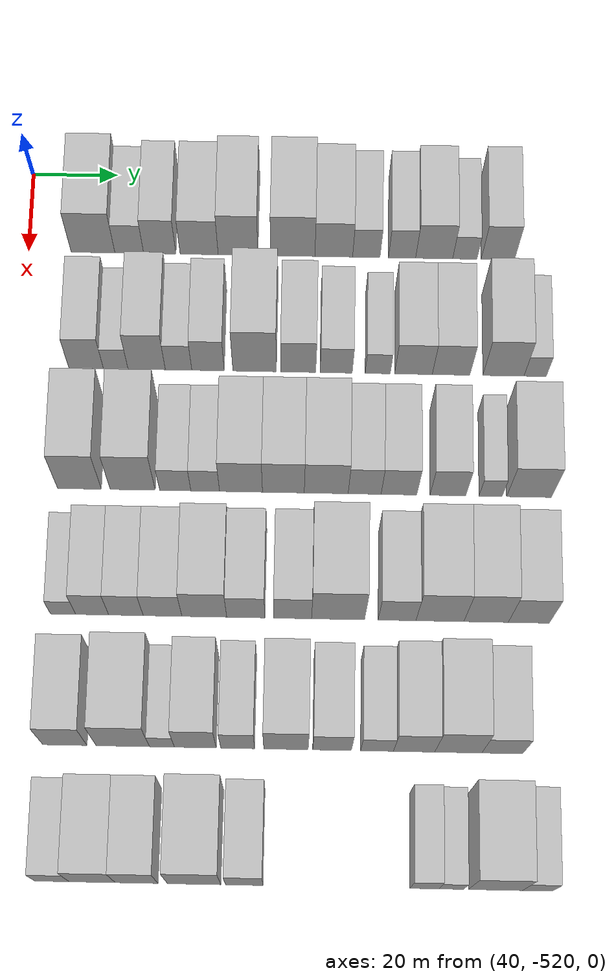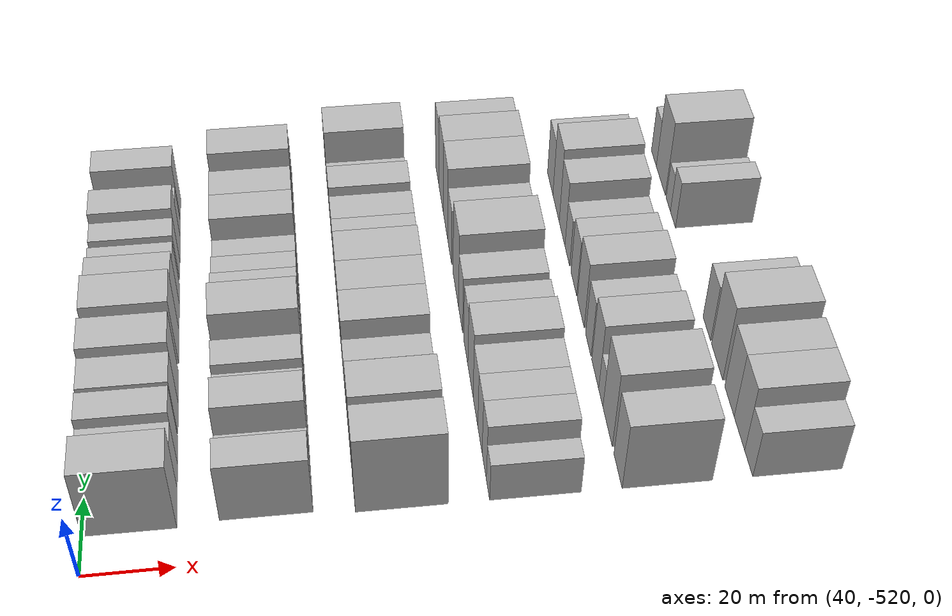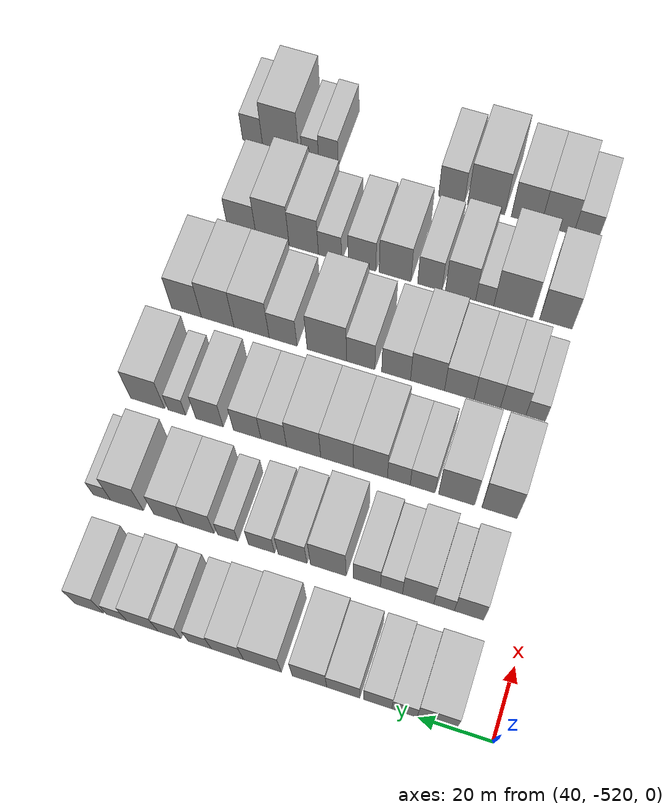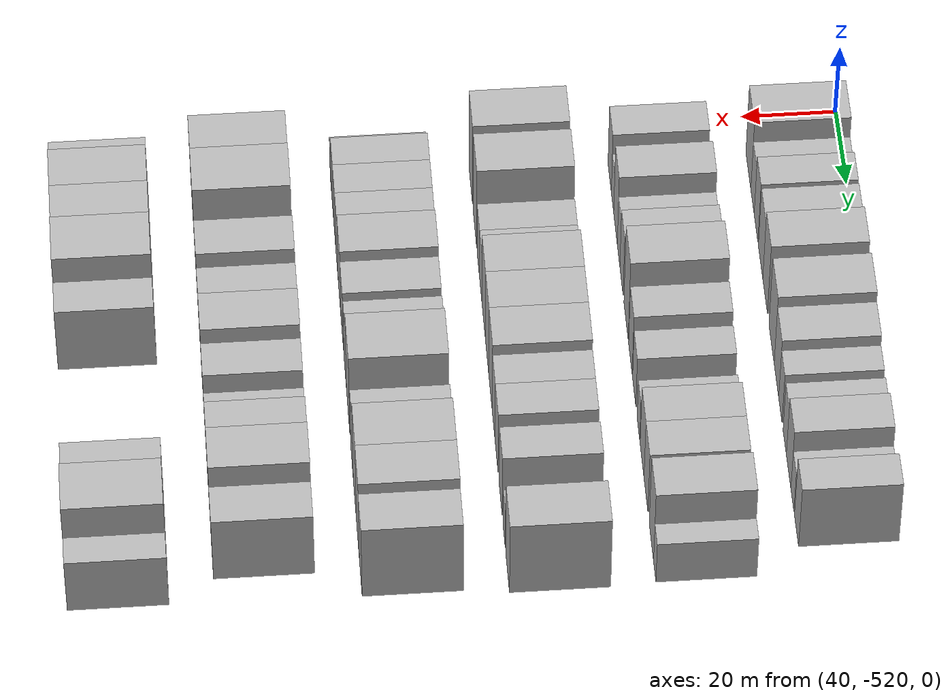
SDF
<sdf version="1.6">
 <world name="default">
  <model name="building_1">
   <static>1</static>
   <pose>50.0000 -504.8626 0 0.000000 0.000000 0.000000</pose>
   <link name="link">
    <pose>0 0 10.50 0 0 0</pose>
    <collision name="collision"><geometry><box><size>20.0000 10.2747 21.0000</size></box></geometry></collision>
    <visual name="visual">
     <cast_shadows>0</cast_shadows>
     <geometry><box><size>20.0000 10.2747 21.0000</size></box></geometry>
     <material>
      <script>
       <uri>model://HANNAS_wall/materials/scripts</uri>
       <uri>model://HANNAS_wall/materials/textures</uri>
       <name>vrc/HANNAS_wall</name>
      </script>
     </material>
    </visual>
   </link>
  </model>
  <model name="building_2">
   <static>1</static>
   <pose>50.0000 -496.3525 0 0.000000 0.000000 0.000000</pose>
   <link name="link">
    <pose>0 0 7.50 0 0 0</pose>
    <collision name="collision"><geometry><box><size>20.0000 6.7457 15.0000</size></box></geometry></collision>
    <visual name="visual">
     <cast_shadows>0</cast_shadows>
     <geometry><box><size>20.0000 6.7457 15.0000</size></box></geometry>
     <material>
      <script>
       <uri>model://HANNAS_wall/materials/scripts</uri>
       <uri>model://HANNAS_wall/materials/textures</uri>
       <name>vrc/HANNAS_wall</name>
      </script>
     </material>
    </visual>
   </link>
  </model>
  <model name="building_3">
   <static>1</static>
   <pose>50.0000 -489.1869 0 0.000000 0.000000 0.000000</pose>
   <link name="link">
    <pose>0 0 9.00 0 0 0</pose>
    <collision name="collision"><geometry><box><size>20.0000 7.5855 18.0000</size></box></geometry></collision>
    <visual name="visual">
     <cast_shadows>0</cast_shadows>
     <geometry><box><size>20.0000 7.5855 18.0000</size></box></geometry>
     <material>
      <script>
       <uri>model://HANNAS_wall/materials/scripts</uri>
       <uri>model://HANNAS_wall/materials/textures</uri>
       <name>vrc/HANNAS_wall</name>
      </script>
     </material>
    </visual>
   </link>
  </model>
  <model name="building_4">
   <static>1</static>
   <pose>50.0000 -479.9340 0 0.000000 0.000000 0.000000</pose>
   <link name="link">
    <pose>0 0 9.00 0 0 0</pose>
    <collision name="collision"><geometry><box><size>20.0000 8.9202 18.0000</size></box></geometry></collision>
    <visual name="visual">
     <cast_shadows>0</cast_shadows>
     <geometry><box><size>20.0000 8.9202 18.0000</size></box></geometry>
     <material>
      <script>
       <uri>model://HANNAS_wall/materials/scripts</uri>
       <uri>model://HANNAS_wall/materials/textures</uri>
       <name>vrc/HANNAS_wall</name>
      </script>
     </material>
    </visual>
   </link>
  </model>
  <model name="building_5">
   <static>1</static>
   <pose>50.0000 -470.8063 0 0.000000 0.000000 0.000000</pose>
   <link name="link">
    <pose>0 0 10.50 0 0 0</pose>
    <collision name="collision"><geometry><box><size>20.0000 9.3353 21.0000</size></box></geometry></collision>
    <visual name="visual">
     <cast_shadows>0</cast_shadows>
     <geometry><box><size>20.0000 9.3353 21.0000</size></box></geometry>
     <material>
      <script>
       <uri>model://HANNAS_wall/materials/scripts</uri>
       <uri>model://HANNAS_wall/materials/textures</uri>
       <name>vrc/HANNAS_wall</name>
      </script>
     </material>
    </visual>
   </link>
  </model>
  <model name="building_6">
   <static>1</static>
   <pose>50.0000 -457.9626 0 0.000000 0.000000 0.000000</pose>
   <link name="link">
    <pose>0 0 10.50 0 0 0</pose>
    <collision name="collision"><geometry><box><size>20.0000 10.3521 21.0000</size></box></geometry></collision>
    <visual name="visual">
     <cast_shadows>0</cast_shadows>
     <geometry><box><size>20.0000 10.3521 21.0000</size></box></geometry>
     <material>
      <script>
       <uri>model://HANNAS_wall/materials/scripts</uri>
       <uri>model://HANNAS_wall/materials/textures</uri>
       <name>vrc/HANNAS_wall</name>
      </script>
     </material>
    </visual>
   </link>
  </model>
  <model name="building_7">
   <static>1</static>
   <pose>50.0000 -448.3528 0 0.000000 0.000000 0.000000</pose>
   <link name="link">
    <pose>0 0 9.00 0 0 0</pose>
    <collision name="collision"><geometry><box><size>20.0000 8.8675 18.0000</size></box></geometry></collision>
    <visual name="visual">
     <cast_shadows>0</cast_shadows>
     <geometry><box><size>20.0000 8.8675 18.0000</size></box></geometry>
     <material>
      <script>
       <uri>model://HANNAS_wall/materials/scripts</uri>
       <uri>model://HANNAS_wall/materials/textures</uri>
       <name>vrc/HANNAS_wall</name>
      </script>
     </material>
    </visual>
   </link>
  </model>
  <model name="building_8">
   <static>1</static>
   <pose>50.0000 -440.7087 0 0.000000 0.000000 0.000000</pose>
   <link name="link">
    <pose>0 0 7.50 0 0 0</pose>
    <collision name="collision"><geometry><box><size>20.0000 6.4206 15.0000</size></box></geometry></collision>
    <visual name="visual">
     <cast_shadows>0</cast_shadows>
     <geometry><box><size>20.0000 6.4206 15.0000</size></box></geometry>
     <material>
      <script>
       <uri>model://HANNAS_wall/materials/scripts</uri>
       <uri>model://HANNAS_wall/materials/textures</uri>
       <name>vrc/HANNAS_wall</name>
      </script>
     </material>
    </visual>
   </link>
  </model>
  <model name="building_9">
   <static>1</static>
   <pose>50.0000 -432.3161 0 0.000000 0.000000 0.000000</pose>
   <link name="link">
    <pose>0 0 7.50 0 0 0</pose>
    <collision name="collision"><geometry><box><size>20.0000 6.3647 15.0000</size></box></geometry></collision>
    <visual name="visual">
     <cast_shadows>0</cast_shadows>
     <geometry><box><size>20.0000 6.3647 15.0000</size></box></geometry>
     <material>
      <script>
       <uri>model://HANNAS_wall/materials/scripts</uri>
       <uri>model://HANNAS_wall/materials/textures</uri>
       <name>vrc/HANNAS_wall</name>
      </script>
     </material>
    </visual>
   </link>
  </model>
  <model name="building_10">
   <static>1</static>
   <pose>50.0000 -424.7892 0 0.000000 0.000000 0.000000</pose>
   <link name="link">
    <pose>0 0 9.00 0 0 0</pose>
    <collision name="collision"><geometry><box><size>20.0000 8.6890 18.0000</size></box></geometry></collision>
    <visual name="visual">
     <cast_shadows>0</cast_shadows>
     <geometry><box><size>20.0000 8.6890 18.0000</size></box></geometry>
     <material>
      <script>
       <uri>model://HANNAS_wall/materials/scripts</uri>
       <uri>model://HANNAS_wall/materials/textures</uri>
       <name>vrc/HANNAS_wall</name>
      </script>
     </material>
    </visual>
   </link>
  </model>
  <model name="building_11">
   <static>1</static>
   <pose>50.0000 -417.5978 0 0.000000 0.000000 0.000000</pose>
   <link name="link">
    <pose>0 0 6.00 0 0 0</pose>
    <collision name="collision"><geometry><box><size>20.0000 5.6939 12.0000</size></box></geometry></collision>
    <visual name="visual">
     <cast_shadows>0</cast_shadows>
     <geometry><box><size>20.0000 5.6939 12.0000</size></box></geometry>
     <material>
      <script>
       <uri>model://HANNAS_wall/materials/scripts</uri>
       <uri>model://HANNAS_wall/materials/textures</uri>
       <name>vrc/HANNAS_wall</name>
      </script>
     </material>
    </visual>
   </link>
  </model>
  <model name="building_12">
   <static>1</static>
   <pose>50.0000 -409.8440 0 0.000000 0.000000 0.000000</pose>
   <link name="link">
    <pose>0 0 9.00 0 0 0</pose>
    <collision name="collision"><geometry><box><size>20.0000 7.8137 18.0000</size></box></geometry></collision>
    <visual name="visual">
     <cast_shadows>0</cast_shadows>
     <geometry><box><size>20.0000 7.8137 18.0000</size></box></geometry>
     <material>
      <script>
       <uri>model://HANNAS_wall/materials/scripts</uri>
       <uri>model://HANNAS_wall/materials/textures</uri>
       <name>vrc/HANNAS_wall</name>
      </script>
     </material>
    </visual>
   </link>
  </model>
  <model name="building_115">
   <static>1</static>
   <pose>79.0000 -505.0220 0 0.000000 0.000000 0.000000</pose>
   <link name="link">
    <pose>0 0 9.00 0 0 0</pose>
    <collision name="collision"><geometry><box><size>20.0000 7.9559 18.0000</size></box></geometry></collision>
    <visual name="visual">
     <cast_shadows>0</cast_shadows>
     <geometry><box><size>20.0000 7.9559 18.0000</size></box></geometry>
     <material>
      <script>
       <uri>model://HANNAS_wall/materials/scripts</uri>
       <uri>model://HANNAS_wall/materials/textures</uri>
       <name>vrc/HANNAS_wall</name>
      </script>
     </material>
    </visual>
   </link>
  </model>
  <model name="building_116">
   <static>1</static>
   <pose>79.0000 -498.2063 0 0.000000 0.000000 0.000000</pose>
   <link name="link">
    <pose>0 0 6.00 0 0 0</pose>
    <collision name="collision"><geometry><box><size>20.0000 5.6756 12.0000</size></box></geometry></collision>
    <visual name="visual">
     <cast_shadows>0</cast_shadows>
     <geometry><box><size>20.0000 5.6756 12.0000</size></box></geometry>
     <material>
      <script>
       <uri>model://HANNAS_wall/materials/scripts</uri>
       <uri>model://HANNAS_wall/materials/textures</uri>
       <name>vrc/HANNAS_wall</name>
      </script>
     </material>
    </visual>
   </link>
  </model>
  <model name="building_117">
   <static>1</static>
   <pose>79.0000 -491.0758 0 0.000000 0.000000 0.000000</pose>
   <link name="link">
    <pose>0 0 10.50 0 0 0</pose>
    <collision name="collision"><geometry><box><size>20.0000 8.5854 21.0000</size></box></geometry></collision>
    <visual name="visual">
     <cast_shadows>0</cast_shadows>
     <geometry><box><size>20.0000 8.5854 21.0000</size></box></geometry>
     <material>
      <script>
       <uri>model://HANNAS_wall/materials/scripts</uri>
       <uri>model://HANNAS_wall/materials/textures</uri>
       <name>vrc/HANNAS_wall</name>
      </script>
     </material>
    </visual>
   </link>
  </model>
  <model name="building_118">
   <static>1</static>
   <pose>79.0000 -483.7342 0 0.000000 0.000000 0.000000</pose>
   <link name="link">
    <pose>0 0 7.50 0 0 0</pose>
    <collision name="collision"><geometry><box><size>20.0000 6.0978 15.0000</size></box></geometry></collision>
    <visual name="visual">
     <cast_shadows>0</cast_shadows>
     <geometry><box><size>20.0000 6.0978 15.0000</size></box></geometry>
     <material>
      <script>
       <uri>model://HANNAS_wall/materials/scripts</uri>
       <uri>model://HANNAS_wall/materials/textures</uri>
       <name>vrc/HANNAS_wall</name>
      </script>
     </material>
    </visual>
   </link>
  </model>
  <model name="building_119">
   <static>1</static>
   <pose>79.0000 -476.9490 0 0.000000 0.000000 0.000000</pose>
   <link name="link">
    <pose>0 0 9.00 0 0 0</pose>
    <collision name="collision"><geometry><box><size>20.0000 7.4724 18.0000</size></box></geometry></collision>
    <visual name="visual">
     <cast_shadows>0</cast_shadows>
     <geometry><box><size>20.0000 7.4724 18.0000</size></box></geometry>
     <material>
      <script>
       <uri>model://HANNAS_wall/materials/scripts</uri>
       <uri>model://HANNAS_wall/materials/textures</uri>
       <name>vrc/HANNAS_wall</name>
      </script>
     </material>
    </visual>
   </link>
  </model>
  <model name="building_120">
   <static>1</static>
   <pose>79.0000 -466.2187 0 0.000000 0.000000 0.000000</pose>
   <link name="link">
    <pose>0 0 12.00 0 0 0</pose>
    <collision name="collision"><geometry><box><size>20.0000 9.9882 24.0000</size></box></geometry></collision>
    <visual name="visual">
     <cast_shadows>0</cast_shadows>
     <geometry><box><size>20.0000 9.9882 24.0000</size></box></geometry>
     <material>
      <script>
       <uri>model://HANNAS_wall/materials/scripts</uri>
       <uri>model://HANNAS_wall/materials/textures</uri>
       <name>vrc/HANNAS_wall</name>
      </script>
     </material>
    </visual>
   </link>
  </model>
  <model name="building_121">
   <static>1</static>
   <pose>79.0000 -456.1933 0 0.000000 0.000000 0.000000</pose>
   <link name="link">
    <pose>0 0 9.00 0 0 0</pose>
    <collision name="collision"><geometry><box><size>20.0000 8.0627 18.0000</size></box></geometry></collision>
    <visual name="visual">
     <cast_shadows>0</cast_shadows>
     <geometry><box><size>20.0000 8.0627 18.0000</size></box></geometry>
     <material>
      <script>
       <uri>model://HANNAS_wall/materials/scripts</uri>
       <uri>model://HANNAS_wall/materials/textures</uri>
       <name>vrc/HANNAS_wall</name>
      </script>
     </material>
    </visual>
   </link>
  </model>
  <model name="building_122">
   <static>1</static>
   <pose>79.0000 -447.4651 0 0.000000 0.000000 0.000000</pose>
   <link name="link">
    <pose>0 0 7.50 0 0 0</pose>
    <collision name="collision"><geometry><box><size>20.0000 7.3936 15.0000</size></box></geometry></collision>
    <visual name="visual">
     <cast_shadows>0</cast_shadows>
     <geometry><box><size>20.0000 7.3936 15.0000</size></box></geometry>
     <material>
      <script>
       <uri>model://HANNAS_wall/materials/scripts</uri>
       <uri>model://HANNAS_wall/materials/textures</uri>
       <name>vrc/HANNAS_wall</name>
      </script>
     </material>
    </visual>
   </link>
  </model>
  <model name="building_123">
   <static>1</static>
   <pose>79.0000 -437.8917 0 0.000000 0.000000 0.000000</pose>
   <link name="link">
    <pose>0 0 6.00 0 0 0</pose>
    <collision name="collision"><geometry><box><size>20.0000 5.7533 12.0000</size></box></geometry></collision>
    <visual name="visual">
     <cast_shadows>0</cast_shadows>
     <geometry><box><size>20.0000 5.7533 12.0000</size></box></geometry>
     <material>
      <script>
       <uri>model://HANNAS_wall/materials/scripts</uri>
       <uri>model://HANNAS_wall/materials/textures</uri>
       <name>vrc/HANNAS_wall</name>
      </script>
     </material>
    </visual>
   </link>
  </model>
  <model name="building_124">
   <static>1</static>
   <pose>79.0000 -429.6796 0 0.000000 0.000000 0.000000</pose>
   <link name="link">
    <pose>0 0 9.00 0 0 0</pose>
    <collision name="collision"><geometry><box><size>20.0000 8.6710 18.0000</size></box></geometry></collision>
    <visual name="visual">
     <cast_shadows>0</cast_shadows>
     <geometry><box><size>20.0000 8.6710 18.0000</size></box></geometry>
     <material>
      <script>
       <uri>model://HANNAS_wall/materials/scripts</uri>
       <uri>model://HANNAS_wall/materials/textures</uri>
       <name>vrc/HANNAS_wall</name>
      </script>
     </material>
    </visual>
   </link>
  </model>
  <model name="building_125">
   <static>1</static>
   <pose>79.0000 -421.0239 0 0.000000 0.000000 0.000000</pose>
   <link name="link">
    <pose>0 0 9.00 0 0 0</pose>
    <collision name="collision"><geometry><box><size>20.0000 8.6403 18.0000</size></box></geometry></collision>
    <visual name="visual">
     <cast_shadows>0</cast_shadows>
     <geometry><box><size>20.0000 8.6403 18.0000</size></box></geometry>
     <material>
      <script>
       <uri>model://HANNAS_wall/materials/scripts</uri>
       <uri>model://HANNAS_wall/materials/textures</uri>
       <name>vrc/HANNAS_wall</name>
      </script>
     </material>
    </visual>
   </link>
  </model>
  <model name="building_126">
   <static>1</static>
   <pose>79.0000 -408.9771 0 0.000000 0.000000 0.000000</pose>
   <link name="link">
    <pose>0 0 10.50 0 0 0</pose>
    <collision name="collision"><geometry><box><size>20.0000 9.4534 21.0000</size></box></geometry></collision>
    <visual name="visual">
     <cast_shadows>0</cast_shadows>
     <geometry><box><size>20.0000 9.4534 21.0000</size></box></geometry>
     <material>
      <script>
       <uri>model://HANNAS_wall/materials/scripts</uri>
       <uri>model://HANNAS_wall/materials/textures</uri>
       <name>vrc/HANNAS_wall</name>
      </script>
     </material>
    </visual>
   </link>
  </model>
  <model name="building_127">
   <static>1</static>
   <pose>79.0000 -401.6951 0 0.000000 0.000000 0.000000</pose>
   <link name="link">
    <pose>0 0 6.00 0 0 0</pose>
    <collision name="collision"><geometry><box><size>20.0000 5.1106 12.0000</size></box></geometry></collision>
    <visual name="visual">
     <cast_shadows>0</cast_shadows>
     <geometry><box><size>20.0000 5.1106 12.0000</size></box></geometry>
     <material>
      <script>
       <uri>model://HANNAS_wall/materials/scripts</uri>
       <uri>model://HANNAS_wall/materials/textures</uri>
       <name>vrc/HANNAS_wall</name>
      </script>
     </material>
    </visual>
   </link>
  </model>
  <model name="building_231">
   <static>1</static>
   <pose>108.0000 -505.0644 0 0.000000 0.000000 0.000000</pose>
   <link name="link">
    <pose>0 0 12.00 0 0 0</pose>
    <collision name="collision"><geometry><box><size>20.0000 9.8711 24.0000</size></box></geometry></collision>
    <visual name="visual">
     <cast_shadows>0</cast_shadows>
     <geometry><box><size>20.0000 9.8711 24.0000</size></box></geometry>
     <material>
      <script>
       <uri>model://HANNAS_wall/materials/scripts</uri>
       <uri>model://HANNAS_wall/materials/textures</uri>
       <name>vrc/HANNAS_wall</name>
      </script>
     </material>
    </visual>
   </link>
  </model>
  <model name="building_232">
   <static>1</static>
   <pose>108.0000 -493.0388 0 0.000000 0.000000 0.000000</pose>
   <link name="link">
    <pose>0 0 12.00 0 0 0</pose>
    <collision name="collision"><geometry><box><size>20.0000 10.1801 24.0000</size></box></geometry></collision>
    <visual name="visual">
     <cast_shadows>0</cast_shadows>
     <geometry><box><size>20.0000 10.1801 24.0000</size></box></geometry>
     <material>
      <script>
       <uri>model://HANNAS_wall/materials/scripts</uri>
       <uri>model://HANNAS_wall/materials/textures</uri>
       <name>vrc/HANNAS_wall</name>
      </script>
     </material>
    </visual>
   </link>
  </model>
  <model name="building_233">
   <static>1</static>
   <pose>108.0000 -483.4308 0 0.000000 0.000000 0.000000</pose>
   <link name="link">
    <pose>0 0 7.50 0 0 0</pose>
    <collision name="collision"><geometry><box><size>20.0000 7.0360 15.0000</size></box></geometry></collision>
    <visual name="visual">
     <cast_shadows>0</cast_shadows>
     <geometry><box><size>20.0000 7.0360 15.0000</size></box></geometry>
     <material>
      <script>
       <uri>model://HANNAS_wall/materials/scripts</uri>
       <uri>model://HANNAS_wall/materials/textures</uri>
       <name>vrc/HANNAS_wall</name>
      </script>
     </material>
    </visual>
   </link>
  </model>
  <model name="building_234">
   <static>1</static>
   <pose>108.0000 -476.6725 0 0.000000 0.000000 0.000000</pose>
   <link name="link">
    <pose>0 0 7.50 0 0 0</pose>
    <collision name="collision"><geometry><box><size>20.0000 6.4805 15.0000</size></box></geometry></collision>
    <visual name="visual">
     <cast_shadows>0</cast_shadows>
     <geometry><box><size>20.0000 6.4805 15.0000</size></box></geometry>
     <material>
      <script>
       <uri>model://HANNAS_wall/materials/scripts</uri>
       <uri>model://HANNAS_wall/materials/textures</uri>
       <name>vrc/HANNAS_wall</name>
      </script>
     </material>
    </visual>
   </link>
  </model>
  <model name="building_235">
   <static>1</static>
   <pose>108.0000 -468.5939 0 0.000000 0.000000 0.000000</pose>
   <link name="link">
    <pose>0 0 10.50 0 0 0</pose>
    <collision name="collision"><geometry><box><size>20.0000 9.6766 21.0000</size></box></geometry></collision>
    <visual name="visual">
     <cast_shadows>0</cast_shadows>
     <geometry><box><size>20.0000 9.6766 21.0000</size></box></geometry>
     <material>
      <script>
       <uri>model://HANNAS_wall/materials/scripts</uri>
       <uri>model://HANNAS_wall/materials/textures</uri>
       <name>vrc/HANNAS_wall</name>
      </script>
     </material>
    </visual>
   </link>
  </model>
  <model name="building_236">
   <static>1</static>
   <pose>108.0000 -459.0474 0 0.000000 0.000000 0.000000</pose>
   <link name="link">
    <pose>0 0 10.50 0 0 0</pose>
    <collision name="collision"><geometry><box><size>20.0000 9.4165 21.0000</size></box></geometry></collision>
    <visual name="visual">
     <cast_shadows>0</cast_shadows>
     <geometry><box><size>20.0000 9.4165 21.0000</size></box></geometry>
     <material>
      <script>
       <uri>model://HANNAS_wall/materials/scripts</uri>
       <uri>model://HANNAS_wall/materials/textures</uri>
       <name>vrc/HANNAS_wall</name>
      </script>
     </material>
    </visual>
   </link>
  </model>
  <model name="building_237">
   <static>1</static>
   <pose>108.0000 -449.3872 0 0.000000 0.000000 0.000000</pose>
   <link name="link">
    <pose>0 0 10.50 0 0 0</pose>
    <collision name="collision"><geometry><box><size>20.0000 9.9040 21.0000</size></box></geometry></collision>
    <visual name="visual">
     <cast_shadows>0</cast_shadows>
     <geometry><box><size>20.0000 9.9040 21.0000</size></box></geometry>
     <material>
      <script>
       <uri>model://HANNAS_wall/materials/scripts</uri>
       <uri>model://HANNAS_wall/materials/textures</uri>
       <name>vrc/HANNAS_wall</name>
      </script>
     </material>
    </visual>
   </link>
  </model>
  <model name="building_238">
   <static>1</static>
   <pose>108.0000 -440.7216 0 0.000000 0.000000 0.000000</pose>
   <link name="link">
    <pose>0 0 9.00 0 0 0</pose>
    <collision name="collision"><geometry><box><size>20.0000 7.4272 18.0000</size></box></geometry></collision>
    <visual name="visual">
     <cast_shadows>0</cast_shadows>
     <geometry><box><size>20.0000 7.4272 18.0000</size></box></geometry>
     <material>
      <script>
       <uri>model://HANNAS_wall/materials/scripts</uri>
       <uri>model://HANNAS_wall/materials/textures</uri>
       <name>vrc/HANNAS_wall</name>
      </script>
     </material>
    </visual>
   </link>
  </model>
  <model name="building_239">
   <static>1</static>
   <pose>108.0000 -432.9918 0 0.000000 0.000000 0.000000</pose>
   <link name="link">
    <pose>0 0 9.00 0 0 0</pose>
    <collision name="collision"><geometry><box><size>20.0000 8.0325 18.0000</size></box></geometry></collision>
    <visual name="visual">
     <cast_shadows>0</cast_shadows>
     <geometry><box><size>20.0000 8.0325 18.0000</size></box></geometry>
     <material>
      <script>
       <uri>model://HANNAS_wall/materials/scripts</uri>
       <uri>model://HANNAS_wall/materials/textures</uri>
       <name>vrc/HANNAS_wall</name>
      </script>
     </material>
    </visual>
   </link>
  </model>
  <model name="building_240">
   <static>1</static>
   <pose>108.0000 -421.9569 0 0.000000 0.000000 0.000000</pose>
   <link name="link">
    <pose>0 0 9.00 0 0 0</pose>
    <collision name="collision"><geometry><box><size>20.0000 8.0373 18.0000</size></box></geometry></collision>
    <visual name="visual">
     <cast_shadows>0</cast_shadows>
     <geometry><box><size>20.0000 8.0373 18.0000</size></box></geometry>
     <material>
      <script>
       <uri>model://HANNAS_wall/materials/scripts</uri>
       <uri>model://HANNAS_wall/materials/textures</uri>
       <name>vrc/HANNAS_wall</name>
      </script>
     </material>
    </visual>
   </link>
  </model>
  <model name="building_241">
   <static>1</static>
   <pose>108.0000 -412.3246 0 0.000000 0.000000 0.000000</pose>
   <link name="link">
    <pose>0 0 6.00 0 0 0</pose>
    <collision name="collision"><geometry><box><size>20.0000 5.2273 12.0000</size></box></geometry></collision>
    <visual name="visual">
     <cast_shadows>0</cast_shadows>
     <geometry><box><size>20.0000 5.2273 12.0000</size></box></geometry>
     <material>
      <script>
       <uri>model://HANNAS_wall/materials/scripts</uri>
       <uri>model://HANNAS_wall/materials/textures</uri>
       <name>vrc/HANNAS_wall</name>
      </script>
     </material>
    </visual>
   </link>
  </model>
  <model name="building_242">
   <static>1</static>
   <pose>108.0000 -403.6536 0 0.000000 0.000000 0.000000</pose>
   <link name="link">
    <pose>0 0 10.50 0 0 0</pose>
    <collision name="collision"><geometry><box><size>20.0000 10.1146 21.0000</size></box></geometry></collision>
    <visual name="visual">
     <cast_shadows>0</cast_shadows>
     <geometry><box><size>20.0000 10.1146 21.0000</size></box></geometry>
     <material>
      <script>
       <uri>model://HANNAS_wall/materials/scripts</uri>
       <uri>model://HANNAS_wall/materials/textures</uri>
       <name>vrc/HANNAS_wall</name>
      </script>
     </material>
    </visual>
   </link>
  </model>
  <model name="building_347">
   <static>1</static>
   <pose>137.0000 -507.2180 0 0.000000 0.000000 0.000000</pose>
   <link name="link">
    <pose>0 0 6.00 0 0 0</pose>
    <collision name="collision"><geometry><box><size>20.0000 5.5640 12.0000</size></box></geometry></collision>
    <visual name="visual">
     <cast_shadows>0</cast_shadows>
     <geometry><box><size>20.0000 5.5640 12.0000</size></box></geometry>
     <material>
      <script>
       <uri>model://HANNAS_wall/materials/scripts</uri>
       <uri>model://HANNAS_wall/materials/textures</uri>
       <name>vrc/HANNAS_wall</name>
      </script>
     </material>
    </visual>
   </link>
  </model>
  <model name="building_348">
   <static>1</static>
   <pose>137.0000 -500.7654 0 0.000000 0.000000 0.000000</pose>
   <link name="link">
    <pose>0 0 9.00 0 0 0</pose>
    <collision name="collision"><geometry><box><size>20.0000 7.3413 18.0000</size></box></geometry></collision>
    <visual name="visual">
     <cast_shadows>0</cast_shadows>
     <geometry><box><size>20.0000 7.3413 18.0000</size></box></geometry>
     <material>
      <script>
       <uri>model://HANNAS_wall/materials/scripts</uri>
       <uri>model://HANNAS_wall/materials/textures</uri>
       <name>vrc/HANNAS_wall</name>
      </script>
     </material>
    </visual>
   </link>
  </model>
  <model name="building_349">
   <static>1</static>
   <pose>137.0000 -493.2828 0 0.000000 0.000000 0.000000</pose>
   <link name="link">
    <pose>0 0 9.00 0 0 0</pose>
    <collision name="collision"><geometry><box><size>20.0000 7.6240 18.0000</size></box></geometry></collision>
    <visual name="visual">
     <cast_shadows>0</cast_shadows>
     <geometry><box><size>20.0000 7.6240 18.0000</size></box></geometry>
     <material>
      <script>
       <uri>model://HANNAS_wall/materials/scripts</uri>
       <uri>model://HANNAS_wall/materials/textures</uri>
       <name>vrc/HANNAS_wall</name>
      </script>
     </material>
    </visual>
   </link>
  </model>
  <model name="building_350">
   <static>1</static>
   <pose>137.0000 -485.1837 0 0.000000 0.000000 0.000000</pose>
   <link name="link">
    <pose>0 0 9.00 0 0 0</pose>
    <collision name="collision"><geometry><box><size>20.0000 8.5742 18.0000</size></box></geometry></collision>
    <visual name="visual">
     <cast_shadows>0</cast_shadows>
     <geometry><box><size>20.0000 8.5742 18.0000</size></box></geometry>
     <material>
      <script>
       <uri>model://HANNAS_wall/materials/scripts</uri>
       <uri>model://HANNAS_wall/materials/textures</uri>
       <name>vrc/HANNAS_wall</name>
      </script>
     </material>
    </visual>
   </link>
  </model>
  <model name="building_351">
   <static>1</static>
   <pose>137.0000 -475.9480 0 0.000000 0.000000 0.000000</pose>
   <link name="link">
    <pose>0 0 10.50 0 0 0</pose>
    <collision name="collision"><geometry><box><size>20.0000 9.8971 21.0000</size></box></geometry></collision>
    <visual name="visual">
     <cast_shadows>0</cast_shadows>
     <geometry><box><size>20.0000 9.8971 21.0000</size></box></geometry>
     <material>
      <script>
       <uri>model://HANNAS_wall/materials/scripts</uri>
       <uri>model://HANNAS_wall/materials/textures</uri>
       <name>vrc/HANNAS_wall</name>
      </script>
     </material>
    </visual>
   </link>
  </model>
  <model name="building_352">
   <static>1</static>
   <pose>137.0000 -466.7822 0 0.000000 0.000000 0.000000</pose>
   <link name="link">
    <pose>0 0 9.00 0 0 0</pose>
    <collision name="collision"><geometry><box><size>20.0000 8.4344 18.0000</size></box></geometry></collision>
    <visual name="visual">
     <cast_shadows>0</cast_shadows>
     <geometry><box><size>20.0000 8.4344 18.0000</size></box></geometry>
     <material>
      <script>
       <uri>model://HANNAS_wall/materials/scripts</uri>
       <uri>model://HANNAS_wall/materials/textures</uri>
       <name>vrc/HANNAS_wall</name>
      </script>
     </material>
    </visual>
   </link>
  </model>
  <model name="building_353">
   <static>1</static>
   <pose>137.0000 -456.4173 0 0.000000 0.000000 0.000000</pose>
   <link name="link">
    <pose>0 0 9.00 0 0 0</pose>
    <collision name="collision"><geometry><box><size>20.0000 8.2955 18.0000</size></box></geometry></collision>
    <visual name="visual">
     <cast_shadows>0</cast_shadows>
     <geometry><box><size>20.0000 8.2955 18.0000</size></box></geometry>
     <material>
      <script>
       <uri>model://HANNAS_wall/materials/scripts</uri>
       <uri>model://HANNAS_wall/materials/textures</uri>
       <name>vrc/HANNAS_wall</name>
      </script>
     </material>
    </visual>
   </link>
  </model>
  <model name="building_354">
   <static>1</static>
   <pose>137.0000 -446.4045 0 0.000000 0.000000 0.000000</pose>
   <link name="link">
    <pose>0 0 12.00 0 0 0</pose>
    <collision name="collision"><geometry><box><size>20.0000 11.7301 24.0000</size></box></geometry></collision>
    <visual name="visual">
     <cast_shadows>0</cast_shadows>
     <geometry><box><size>20.0000 11.7301 24.0000</size></box></geometry>
     <material>
      <script>
       <uri>model://HANNAS_wall/materials/scripts</uri>
       <uri>model://HANNAS_wall/materials/textures</uri>
       <name>vrc/HANNAS_wall</name>
      </script>
     </material>
    </visual>
   </link>
  </model>
  <model name="building_355">
   <static>1</static>
   <pose>137.0000 -433.3711 0 0.000000 0.000000 0.000000</pose>
   <link name="link">
    <pose>0 0 9.00 0 0 0</pose>
    <collision name="collision"><geometry><box><size>20.0000 8.3367 18.0000</size></box></geometry></collision>
    <visual name="visual">
     <cast_shadows>0</cast_shadows>
     <geometry><box><size>20.0000 8.3367 18.0000</size></box></geometry>
     <material>
      <script>
       <uri>model://HANNAS_wall/materials/scripts</uri>
       <uri>model://HANNAS_wall/materials/textures</uri>
       <name>vrc/HANNAS_wall</name>
      </script>
     </material>
    </visual>
   </link>
  </model>
  <model name="building_356">
   <static>1</static>
   <pose>137.0000 -423.9082 0 0.000000 0.000000 0.000000</pose>
   <link name="link">
    <pose>0 0 12.00 0 0 0</pose>
    <collision name="collision"><geometry><box><size>20.0000 10.5890 24.0000</size></box></geometry></collision>
    <visual name="visual">
     <cast_shadows>0</cast_shadows>
     <geometry><box><size>20.0000 10.5890 24.0000</size></box></geometry>
     <material>
      <script>
       <uri>model://HANNAS_wall/materials/scripts</uri>
       <uri>model://HANNAS_wall/materials/textures</uri>
       <name>vrc/HANNAS_wall</name>
      </script>
     </material>
    </visual>
   </link>
  </model>
  <model name="building_357">
   <static>1</static>
   <pose>137.0000 -413.6998 0 0.000000 0.000000 0.000000</pose>
   <link name="link">
    <pose>0 0 12.00 0 0 0</pose>
    <collision name="collision"><geometry><box><size>20.0000 9.8279 24.0000</size></box></geometry></collision>
    <visual name="visual">
     <cast_shadows>0</cast_shadows>
     <geometry><box><size>20.0000 9.8279 24.0000</size></box></geometry>
     <material>
      <script>
       <uri>model://HANNAS_wall/materials/scripts</uri>
       <uri>model://HANNAS_wall/materials/textures</uri>
       <name>vrc/HANNAS_wall</name>
      </script>
     </material>
    </visual>
   </link>
  </model>
  <model name="building_358">
   <static>1</static>
   <pose>137.0000 -404.2583 0 0.000000 0.000000 0.000000</pose>
   <link name="link">
    <pose>0 0 10.50 0 0 0</pose>
    <collision name="collision"><geometry><box><size>20.0000 9.0550 21.0000</size></box></geometry></collision>
    <visual name="visual">
     <cast_shadows>0</cast_shadows>
     <geometry><box><size>20.0000 9.0550 21.0000</size></box></geometry>
     <material>
      <script>
       <uri>model://HANNAS_wall/materials/scripts</uri>
       <uri>model://HANNAS_wall/materials/textures</uri>
       <name>vrc/HANNAS_wall</name>
      </script>
     </material>
    </visual>
   </link>
  </model>
  <model name="building_459">
   <static>1</static>
   <pose>166.0000 -505.2181 0 0.000000 0.000000 0.000000</pose>
   <link name="link">
    <pose>0 0 10.50 0 0 0</pose>
    <collision name="collision"><geometry><box><size>20.0000 9.5637 21.0000</size></box></geometry></collision>
    <visual name="visual">
     <cast_shadows>0</cast_shadows>
     <geometry><box><size>20.0000 9.5637 21.0000</size></box></geometry>
     <material>
      <script>
       <uri>model://HANNAS_wall/materials/scripts</uri>
       <uri>model://HANNAS_wall/materials/textures</uri>
       <name>vrc/HANNAS_wall</name>
      </script>
     </material>
    </visual>
   </link>
  </model>
  <model name="building_460">
   <static>1</static>
   <pose>166.0000 -492.6686 0 0.000000 0.000000 0.000000</pose>
   <link name="link">
    <pose>0 0 12.00 0 0 0</pose>
    <collision name="collision"><geometry><box><size>20.0000 11.5354 24.0000</size></box></geometry></collision>
    <visual name="visual">
     <cast_shadows>0</cast_shadows>
     <geometry><box><size>20.0000 11.5354 24.0000</size></box></geometry>
     <material>
      <script>
       <uri>model://HANNAS_wall/materials/scripts</uri>
       <uri>model://HANNAS_wall/materials/textures</uri>
       <name>vrc/HANNAS_wall</name>
      </script>
     </material>
    </visual>
   </link>
  </model>
  <model name="building_461">
   <static>1</static>
   <pose>166.0000 -484.1971 0 0.000000 0.000000 0.000000</pose>
   <link name="link">
    <pose>0 0 6.00 0 0 0</pose>
    <collision name="collision"><geometry><box><size>20.0000 5.4075 12.0000</size></box></geometry></collision>
    <visual name="visual">
     <cast_shadows>0</cast_shadows>
     <geometry><box><size>20.0000 5.4075 12.0000</size></box></geometry>
     <material>
      <script>
       <uri>model://HANNAS_wall/materials/scripts</uri>
       <uri>model://HANNAS_wall/materials/textures</uri>
       <name>vrc/HANNAS_wall</name>
      </script>
     </material>
    </visual>
   </link>
  </model>
  <model name="building_462">
   <static>1</static>
   <pose>166.0000 -476.9698 0 0.000000 0.000000 0.000000</pose>
   <link name="link">
    <pose>0 0 10.50 0 0 0</pose>
    <collision name="collision"><geometry><box><size>20.0000 9.0471 21.0000</size></box></geometry></collision>
    <visual name="visual">
     <cast_shadows>0</cast_shadows>
     <geometry><box><size>20.0000 9.0471 21.0000</size></box></geometry>
     <material>
      <script>
       <uri>model://HANNAS_wall/materials/scripts</uri>
       <uri>model://HANNAS_wall/materials/textures</uri>
       <name>vrc/HANNAS_wall</name>
      </script>
     </material>
    </visual>
   </link>
  </model>
  <model name="building_463">
   <static>1</static>
   <pose>166.0000 -467.7959 0 0.000000 0.000000 0.000000</pose>
   <link name="link">
    <pose>0 0 9.00 0 0 0</pose>
    <collision name="collision"><geometry><box><size>20.0000 7.3006 18.0000</size></box></geometry></collision>
    <visual name="visual">
     <cast_shadows>0</cast_shadows>
     <geometry><box><size>20.0000 7.3006 18.0000</size></box></geometry>
     <material>
      <script>
       <uri>model://HANNAS_wall/materials/scripts</uri>
       <uri>model://HANNAS_wall/materials/textures</uri>
       <name>vrc/HANNAS_wall</name>
      </script>
     </material>
    </visual>
   </link>
  </model>
  <model name="building_464">
   <static>1</static>
   <pose>166.0000 -457.3543 0 0.000000 0.000000 0.000000</pose>
   <link name="link">
    <pose>0 0 10.50 0 0 0</pose>
    <collision name="collision"><geometry><box><size>20.0000 9.5827 21.0000</size></box></geometry></collision>
    <visual name="visual">
     <cast_shadows>0</cast_shadows>
     <geometry><box><size>20.0000 9.5827 21.0000</size></box></geometry>
     <material>
      <script>
       <uri>model://HANNAS_wall/materials/scripts</uri>
       <uri>model://HANNAS_wall/materials/textures</uri>
       <name>vrc/HANNAS_wall</name>
      </script>
     </material>
    </visual>
   </link>
  </model>
  <model name="building_465">
   <static>1</static>
   <pose>166.0000 -447.3855 0 0.000000 0.000000 0.000000</pose>
   <link name="link">
    <pose>0 0 9.00 0 0 0</pose>
    <collision name="collision"><geometry><box><size>20.0000 8.3548 18.0000</size></box></geometry></collision>
    <visual name="visual">
     <cast_shadows>0</cast_shadows>
     <geometry><box><size>20.0000 8.3548 18.0000</size></box></geometry>
     <material>
      <script>
       <uri>model://HANNAS_wall/materials/scripts</uri>
       <uri>model://HANNAS_wall/materials/textures</uri>
       <name>vrc/HANNAS_wall</name>
      </script>
     </material>
    </visual>
   </link>
  </model>
  <model name="building_466">
   <static>1</static>
   <pose>166.0000 -437.6591 0 0.000000 0.000000 0.000000</pose>
   <link name="link">
    <pose>0 0 7.50 0 0 0</pose>
    <collision name="collision"><geometry><box><size>20.0000 7.0980 15.0000</size></box></geometry></collision>
    <visual name="visual">
     <cast_shadows>0</cast_shadows>
     <geometry><box><size>20.0000 7.0980 15.0000</size></box></geometry>
     <material>
      <script>
       <uri>model://HANNAS_wall/materials/scripts</uri>
       <uri>model://HANNAS_wall/materials/textures</uri>
       <name>vrc/HANNAS_wall</name>
      </script>
     </material>
    </visual>
   </link>
  </model>
  <model name="building_467">
   <static>1</static>
   <pose>166.0000 -429.6351 0 0.000000 0.000000 0.000000</pose>
   <link name="link">
    <pose>0 0 10.50 0 0 0</pose>
    <collision name="collision"><geometry><box><size>20.0000 8.9499 21.0000</size></box></geometry></collision>
    <visual name="visual">
     <cast_shadows>0</cast_shadows>
     <geometry><box><size>20.0000 8.9499 21.0000</size></box></geometry>
     <material>
      <script>
       <uri>model://HANNAS_wall/materials/scripts</uri>
       <uri>model://HANNAS_wall/materials/textures</uri>
       <name>vrc/HANNAS_wall</name>
      </script>
     </material>
    </visual>
   </link>
  </model>
  <model name="building_468">
   <static>1</static>
   <pose>166.0000 -420.0747 0 0.000000 0.000000 0.000000</pose>
   <link name="link">
    <pose>0 0 12.00 0 0 0</pose>
    <collision name="collision"><geometry><box><size>20.0000 10.1710 24.0000</size></box></geometry></collision>
    <visual name="visual">
     <cast_shadows>0</cast_shadows>
     <geometry><box><size>20.0000 10.1710 24.0000</size></box></geometry>
     <material>
      <script>
       <uri>model://HANNAS_wall/materials/scripts</uri>
       <uri>model://HANNAS_wall/materials/textures</uri>
       <name>vrc/HANNAS_wall</name>
      </script>
     </material>
    </visual>
   </link>
  </model>
  <model name="building_469">
   <static>1</static>
   <pose>166.0000 -410.5604 0 0.000000 0.000000 0.000000</pose>
   <link name="link">
    <pose>0 0 9.00 0 0 0</pose>
    <collision name="collision"><geometry><box><size>20.0000 8.8576 18.0000</size></box></geometry></collision>
    <visual name="visual">
     <cast_shadows>0</cast_shadows>
     <geometry><box><size>20.0000 8.8576 18.0000</size></box></geometry>
     <material>
      <script>
       <uri>model://HANNAS_wall/materials/scripts</uri>
       <uri>model://HANNAS_wall/materials/textures</uri>
       <name>vrc/HANNAS_wall</name>
      </script>
     </material>
    </visual>
   </link>
  </model>
  <model name="building_575">
   <static>1</static>
   <pose>195.0000 -506.3629 0 0.000000 0.000000 0.000000</pose>
   <link name="link">
    <pose>0 0 7.50 0 0 0</pose>
    <collision name="collision"><geometry><box><size>20.0000 7.2742 15.0000</size></box></geometry></collision>
    <visual name="visual">
     <cast_shadows>0</cast_shadows>
     <geometry><box><size>20.0000 7.2742 15.0000</size></box></geometry>
     <material>
      <script>
       <uri>model://HANNAS_wall/materials/scripts</uri>
       <uri>model://HANNAS_wall/materials/textures</uri>
       <name>vrc/HANNAS_wall</name>
      </script>
     </material>
    </visual>
   </link>
  </model>
  <model name="building_576">
   <static>1</static>
   <pose>195.0000 -497.8451 0 0.000000 0.000000 0.000000</pose>
   <link name="link">
    <pose>0 0 10.50 0 0 0</pose>
    <collision name="collision"><geometry><box><size>20.0000 9.7613 21.0000</size></box></geometry></collision>
    <visual name="visual">
     <cast_shadows>0</cast_shadows>
     <geometry><box><size>20.0000 9.7613 21.0000</size></box></geometry>
     <material>
      <script>
       <uri>model://HANNAS_wall/materials/scripts</uri>
       <uri>model://HANNAS_wall/materials/textures</uri>
       <name>vrc/HANNAS_wall</name>
      </script>
     </material>
    </visual>
   </link>
  </model>
  <model name="building_577">
   <static>1</static>
   <pose>195.0000 -488.4340 0 0.000000 0.000000 0.000000</pose>
   <link name="link">
    <pose>0 0 10.50 0 0 0</pose>
    <collision name="collision"><geometry><box><size>20.0000 9.0611 21.0000</size></box></geometry></collision>
    <visual name="visual">
     <cast_shadows>0</cast_shadows>
     <geometry><box><size>20.0000 9.0611 21.0000</size></box></geometry>
     <material>
      <script>
       <uri>model://HANNAS_wall/materials/scripts</uri>
       <uri>model://HANNAS_wall/materials/textures</uri>
       <name>vrc/HANNAS_wall</name>
      </script>
     </material>
    </visual>
   </link>
  </model>
  <model name="building_578">
   <static>1</static>
   <pose>195.0000 -476.2445 0 0.000000 0.000000 0.000000</pose>
   <link name="link">
    <pose>0 0 12.00 0 0 0</pose>
    <collision name="collision"><geometry><box><size>20.0000 11.3179 24.0000</size></box></geometry></collision>
    <visual name="visual">
     <cast_shadows>0</cast_shadows>
     <geometry><box><size>20.0000 11.3179 24.0000</size></box></geometry>
     <material>
      <script>
       <uri>model://HANNAS_wall/materials/scripts</uri>
       <uri>model://HANNAS_wall/materials/textures</uri>
       <name>vrc/HANNAS_wall</name>
      </script>
     </material>
    </visual>
   </link>
  </model>
  <model name="building_579">
   <static>1</static>
   <pose>195.0000 -465.6361 0 0.000000 0.000000 0.000000</pose>
   <link name="link">
    <pose>0 0 9.00 0 0 0</pose>
    <collision name="collision"><geometry><box><size>20.0000 7.8988 18.0000</size></box></geometry></collision>
    <visual name="visual">
     <cast_shadows>0</cast_shadows>
     <geometry><box><size>20.0000 7.8988 18.0000</size></box></geometry>
     <material>
      <script>
       <uri>model://HANNAS_wall/materials/scripts</uri>
       <uri>model://HANNAS_wall/materials/textures</uri>
       <name>vrc/HANNAS_wall</name>
      </script>
     </material>
    </visual>
   </link>
  </model>
  <model name="building_580">
   <static>1</static>
   <pose>195.0000 -427.4957 0 0.000000 0.000000 0.000000</pose>
   <link name="link">
    <pose>0 0 7.50 0 0 0</pose>
    <collision name="collision"><geometry><box><size>20.0000 6.1273 15.0000</size></box></geometry></collision>
    <visual name="visual">
     <cast_shadows>0</cast_shadows>
     <geometry><box><size>20.0000 6.1273 15.0000</size></box></geometry>
     <material>
      <script>
       <uri>model://HANNAS_wall/materials/scripts</uri>
       <uri>model://HANNAS_wall/materials/textures</uri>
       <name>vrc/HANNAS_wall</name>
      </script>
     </material>
    </visual>
   </link>
  </model>
  <model name="building_581">
   <static>1</static>
   <pose>195.0000 -421.8039 0 0.000000 0.000000 0.000000</pose>
   <link name="link">
    <pose>0 0 6.00 0 0 0</pose>
    <collision name="collision"><geometry><box><size>20.0000 5.2562 12.0000</size></box></geometry></collision>
    <visual name="visual">
     <cast_shadows>0</cast_shadows>
     <geometry><box><size>20.0000 5.2562 12.0000</size></box></geometry>
     <material>
      <script>
       <uri>model://HANNAS_wall/materials/scripts</uri>
       <uri>model://HANNAS_wall/materials/textures</uri>
       <name>vrc/HANNAS_wall</name>
      </script>
     </material>
    </visual>
   </link>
  </model>
  <model name="building_582">
   <static>1</static>
   <pose>195.0000 -412.4520 0 0.000000 0.000000 0.000000</pose>
   <link name="link">
    <pose>0 0 12.00 0 0 0</pose>
    <collision name="collision"><geometry><box><size>20.0000 11.4477 24.0000</size></box></geometry></collision>
    <visual name="visual">
     <cast_shadows>0</cast_shadows>
     <geometry><box><size>20.0000 11.4477 24.0000</size></box></geometry>
     <material>
      <script>
       <uri>model://HANNAS_wall/materials/scripts</uri>
       <uri>model://HANNAS_wall/materials/textures</uri>
       <name>vrc/HANNAS_wall</name>
      </script>
     </material>
    </visual>
   </link>
  </model>
  <model name="building_583">
   <static>1</static>
   <pose>195.0000 -403.5609 0 0.000000 0.000000 0.000000</pose>
   <link name="link">
    <pose>0 0 7.50 0 0 0</pose>
    <collision name="collision"><geometry><box><size>20.0000 6.3345 15.0000</size></box></geometry></collision>
    <visual name="visual">
     <cast_shadows>0</cast_shadows>
     <geometry><box><size>20.0000 6.3345 15.0000</size></box></geometry>
     <material>
      <script>
       <uri>model://HANNAS_wall/materials/scripts</uri>
       <uri>model://HANNAS_wall/materials/textures</uri>
       <name>vrc/HANNAS_wall</name>
      </script>
     </material>
    </visual>
   </link>
  </model>
 </world>
</sdf>
